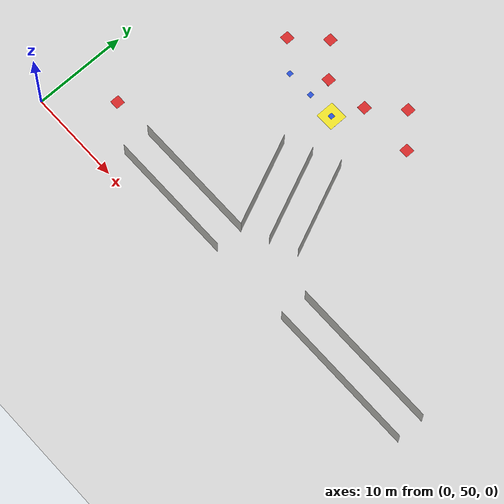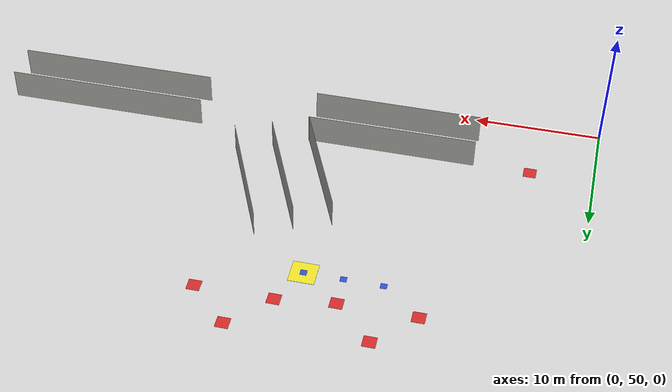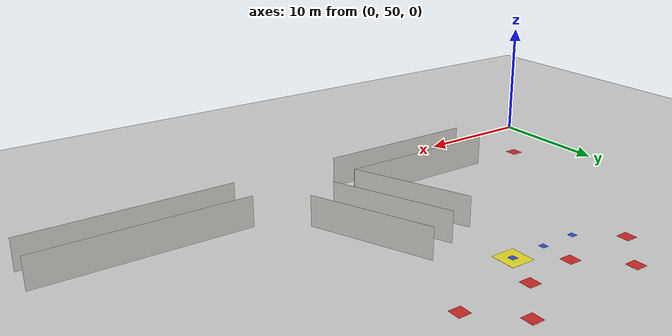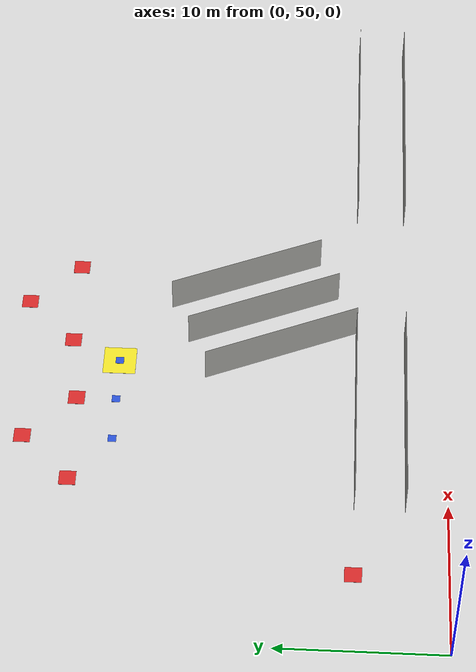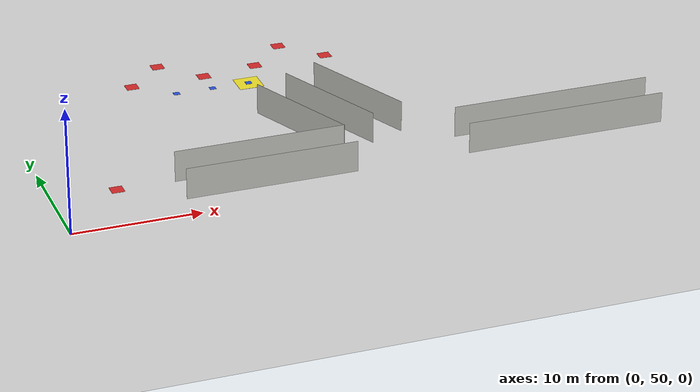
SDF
<sdf version="1.6">
 <world name="default">
  <model name="ground_plane">
   <static>1</static>
   <link name="link">
    <collision name="collision">
     <geometry><plane><normal>0 0 1</normal><size>100 100</size></plane></geometry>
     <surface><friction><ode><mu>100</mu><mu2>50</mu2></ode></friction></surface>
    </collision>
    <visual name="visual">
     <cast_shadows>0</cast_shadows>
     <geometry><plane><normal>0 0 1</normal><size>100 100</size></plane></geometry>
     <material>
      <script><uri>file://media/materials/scripts/gazebo.material</uri><name>Gazebo/Grey</name></script>
     </material>
    </visual>
   </link>
  </model>
  <model name="EMS_T3">
   <pose>23.7245 61.2495 0 0 -0 0</pose>
   <link name="Wall_4">
    <collision name="Wall_4_Collision">
     <geometry><box><size>10.0198 0.001 2.5</size></box></geometry>
     <pose>0 0 1.25 0 -0 0</pose>
    </collision>
    <visual name="Wall_4_Visual">
     <pose>0 0 1.25 0 -0 0</pose>
     <geometry><box><size>10.0198 0.001 2.5</size></box></geometry>
     <material>
      <script><uri>file://media/materials/scripts/gazebo.material</uri><name>Gazebo/CeilingTiled</name></script>
      <ambient>0.435294 0.796078 0.67451 1</ambient>
     </material>
    </visual>
    <pose>0 -2e-06 0 0 -0 1.9733</pose>
   </link>
   <static>1</static>
  </model>
  <model name="EMS_T3_clone">
   <pose>20.9647 60.0749 0 0 -0 0</pose>
   <link name="Wall_4">
    <collision name="Wall_4_Collision">
     <geometry><box><size>10.0198 0.001 2.5</size></box></geometry>
     <pose>0 0 1.25 0 -0 0</pose>
    </collision>
    <visual name="Wall_4_Visual">
     <pose>0 0 1.25 0 -0 0</pose>
     <geometry><box><size>10.0198 0.001 2.5</size></box></geometry>
     <material>
      <script><uri>file://media/materials/scripts/gazebo.material</uri><name>Gazebo/CeilingTiled</name></script>
      <ambient>0.435294 0.796078 0.67451 1</ambient>
     </material>
    </visual>
    <pose>0 -2e-06 0 0 -0 1.9733</pose>
   </link>
   <static>1</static>
  </model>
  <model name="EMS_T3_clone_0">
   <pose>26.4853 62.4251 0 0 -0 0</pose>
   <link name="Wall_4">
    <collision name="Wall_4_Collision">
     <geometry><box><size>10.0198 0.001 2.5</size></box></geometry>
     <pose>0 0 1.25 0 -0 0</pose>
    </collision>
    <visual name="Wall_4_Visual">
     <pose>0 0 1.25 0 -0 0</pose>
     <geometry><box><size>10.0198 0.001 2.5</size></box></geometry>
     <material>
      <script><uri>file://media/materials/scripts/gazebo.material</uri><name>Gazebo/CeilingTiled</name></script>
      <ambient>0.435294 0.796078 0.67451 1</ambient>
     </material>
    </visual>
    <pose>0 -2e-06 0 0 -0 1.9733</pose>
   </link>
   <static>1</static>
  </model>
  <model name="EMS_T5">
   <pose>16.225 52.5 0 0 -0 0</pose>
   <link name="Wall_6">
    <collision name="Wall_6_Collision">
     <geometry><box><size>13.45 0.001 2.5</size></box></geometry>
     <pose>0 0 1.25 0 -0 0</pose>
    </collision>
    <visual name="Wall_6_Visual">
     <pose>0 0 1.25 0 -0 0</pose>
     <geometry><box><size>13.45 0.001 2.5</size></box></geometry>
     <material>
      <script><uri>file://media/materials/scripts/gazebo.material</uri><name>Gazebo/CeilingTiled</name></script>
      <ambient>0.435294 0.796078 0.67451 1</ambient>
     </material>
    </visual>
    <pose>0 0 0 0 -0 3.14159</pose>
   </link>
   <static>1</static>
  </model>
  <model name="EMX_T9">
   <pose>40 52.5 0 0 -0 0</pose>
   <link name="Wall_16">
    <collision name="Wall_16_Collision">
     <geometry><box><size>16.1 0.001 2.5</size></box></geometry>
     <pose>0 0 1.25 0 -0 0</pose>
    </collision>
    <visual name="Wall_16_Visual">
     <pose>0 0 1.25 0 -0 0</pose>
     <geometry><box><size>16.1 0.001 2.5</size></box></geometry>
     <material>
      <script><uri>file://media/materials/scripts/gazebo.material</uri><name>Gazebo/CeilingTiled</name></script>
      <ambient>0.435294 0.796078 0.67451 1</ambient>
     </material>
    </visual>
   </link>
   <static>1</static>
  </model>
  <model name="EMX_T9_clone">
   <pose>40 55.5 0 0 -0 0</pose>
   <link name="Wall_16">
    <collision name="Wall_16_Collision">
     <geometry><box><size>16.1 0.001 2.5</size></box></geometry>
     <pose>0 0 1.25 0 -0 0</pose>
    </collision>
    <visual name="Wall_16_Visual">
     <pose>0 0 1.25 0 -0 0</pose>
     <geometry><box><size>16.1 0.001 2.5</size></box></geometry>
     <material>
      <script><uri>file://media/materials/scripts/gazebo.material</uri><name>Gazebo/CeilingTiled</name></script>
      <ambient>0.435294 0.796078 0.67451 1</ambient>
     </material>
    </visual>
   </link>
   <static>1</static>
  </model>
  <model name="EMS_T5_clone_0">
   <pose>16.225 55.5 0 0 -0 0</pose>
   <link name="Wall_6">
    <collision name="Wall_6_Collision">
     <geometry><box><size>13.45 0.001 2.5</size></box></geometry>
     <pose>0 0 1.25 0 -0 0</pose>
    </collision>
    <visual name="Wall_6_Visual">
     <pose>0 0 1.25 0 -0 0</pose>
     <geometry><box><size>13.45 0.001 2.5</size></box></geometry>
     <material>
      <script><uri>file://media/materials/scripts/gazebo.material</uri><name>Gazebo/CeilingTiled</name></script>
      <ambient>0.435294 0.796078 0.67451 1</ambient>
     </material>
    </visual>
    <pose>0 0 0 0 -0 3.14159</pose>
   </link>
   <static>1</static>
  </model>
  <model name="my_objectT1">
   <link name="my_box">
    <inertial>
     <mass>1</mass>
     <inertia><ixx>1</ixx><ixy>0</ixy><ixz>0</ixz><iyy>100</iyy><iyz>0</iyz><izz>1</izz></inertia>
    </inertial>
    <collision name="my_box_collision"><geometry><box><size>2 2 0.01</size></box></geometry></collision>
    <visual name="my_box_visual">
     <geometry><box><size>2 2 0.01</size></box></geometry>
     <material>
      <script><name>Gazebo/Yellow</name><uri>file://media/materials/scripts/gazebo.material</uri></script>
     </material>
    </visual>
   </link>
   <pose>20 70 0.1 0 -0 0</pose>
  </model>
  <model name="my_objecteg1w2">
   <link name="my_box">
    <inertial>
     <mass>1</mass>
     <inertia><ixx>1</ixx><ixy>0</ixy><ixz>0</ixz><iyy>100</iyy><iyz>0</iyz><izz>1</izz></inertia>
    </inertial>
    <collision name="my_box_collision"><geometry><box><size>1 1 0.01</size></box></geometry></collision>
    <visual name="my_box_visual">
     <geometry><box><size>1 1 0.01</size></box></geometry>
     <material>
      <script><name>Gazebo/Red</name><uri>file://media/materials/scripts/gazebo.material</uri></script>
     </material>
    </visual>
   </link>
   <pose>5 55.5 0.11 0 -0 0</pose>
  </model>
  <model name="my_objecteg5w1">
   <link name="my_box">
    <inertial>
     <mass>1</mass>
     <inertia><ixx>1</ixx><ixy>0</ixy><ixz>0</ixz><iyy>100</iyy><iyz>0</iyz><izz>1</izz></inertia>
    </inertial>
    <collision name="my_box_collision"><geometry><box><size>1 1 0.01</size></box></geometry></collision>
    <visual name="my_box_visual">
     <geometry><box><size>1 1 0.01</size></box></geometry>
     <material>
      <script><name>Gazebo/Red</name><uri>file://media/materials/scripts/gazebo.material</uri></script>
     </material>
    </visual>
   </link>
   <pose>11 72.4 0.11 0 -0 0</pose>
  </model>
  <model name="my_objecteg5w2">
   <link name="my_box">
    <inertial>
     <mass>1</mass>
     <inertia><ixx>1</ixx><ixy>0</ixy><ixz>0</ixz><iyy>100</iyy><iyz>0</iyz><izz>1</izz></inertia>
    </inertial>
    <collision name="my_box_collision"><geometry><box><size>1 1 0.01</size></box></geometry></collision>
    <visual name="my_box_visual">
     <geometry><box><size>1 1 0.01</size></box></geometry>
     <material>
      <script><name>Gazebo/Red</name><uri>file://media/materials/scripts/gazebo.material</uri></script>
     </material>
    </visual>
   </link>
   <pose>14 75.4 0.11 0 -0 0</pose>
  </model>
  <model name="my_objecteg5w3">
   <link name="my_box">
    <inertial>
     <mass>1</mass>
     <inertia><ixx>1</ixx><ixy>0</ixy><ixz>0</ixz><iyy>100</iyy><iyz>0</iyz><izz>1</izz></inertia>
    </inertial>
    <collision name="my_box_collision"><geometry><box><size>1 1 0.01</size></box></geometry></collision>
    <visual name="my_box_visual">
     <geometry><box><size>1 1 0.01</size></box></geometry>
     <material>
      <script><name>Gazebo/Red</name><uri>file://media/materials/scripts/gazebo.material</uri></script>
     </material>
    </visual>
   </link>
   <pose>17 72.4 0.11 0 -0 0</pose>
  </model>
  <model name="my_objecteg6w1">
   <link name="my_box">
    <inertial>
     <mass>1</mass>
     <inertia><ixx>1</ixx><ixy>0</ixy><ixz>0</ixz><iyy>100</iyy><iyz>0</iyz><izz>1</izz></inertia>
    </inertial>
    <collision name="my_box_collision"><geometry><box><size>1 1 0.01</size></box></geometry></collision>
    <visual name="my_box_visual">
     <geometry><box><size>1 1 0.01</size></box></geometry>
     <material>
      <script><name>Gazebo/Red</name><uri>file://media/materials/scripts/gazebo.material</uri></script>
     </material>
    </visual>
   </link>
   <pose>21.5 73 0.11 0 -0 0</pose>
  </model>
  <model name="my_objecteg6w2">
   <link name="my_box">
    <inertial>
     <mass>1</mass>
     <inertia><ixx>1</ixx><ixy>0</ixy><ixz>0</ixz><iyy>100</iyy><iyz>0</iyz><izz>1</izz></inertia>
    </inertial>
    <collision name="my_box_collision"><geometry><box><size>1 1 0.01</size></box></geometry></collision>
    <visual name="my_box_visual">
     <geometry><box><size>1 1 0.01</size></box></geometry>
     <material>
      <script><name>Gazebo/Red</name><uri>file://media/materials/scripts/gazebo.material</uri></script>
     </material>
    </visual>
   </link>
   <pose>24.5 76 0.11 0 -0 0</pose>
  </model>
  <model name="my_objecteg6w3">
   <link name="my_box">
    <inertial>
     <mass>1</mass>
     <inertia><ixx>1</ixx><ixy>0</ixy><ixz>0</ixz><iyy>100</iyy><iyz>0</iyz><izz>1</izz></inertia>
    </inertial>
    <collision name="my_box_collision"><geometry><box><size>1 1 0.01</size></box></geometry></collision>
    <visual name="my_box_visual">
     <geometry><box><size>1 1 0.01</size></box></geometry>
     <material>
      <script><name>Gazebo/Red</name><uri>file://media/materials/scripts/gazebo.material</uri></script>
     </material>
    </visual>
   </link>
   <pose>27.5 73 0.11 0 -0 0</pose>
  </model>
  <model name="my_objectg3w1">
   <link name="my_box">
    <inertial>
     <mass>1</mass>
     <inertia><ixx>1</ixx><ixy>0</ixy><ixz>0</ixz><iyy>100</iyy><iyz>0</iyz><izz>1</izz></inertia>
    </inertial>
    <collision name="my_box_collision"><geometry><box><size>0.5 0.5 0.01</size></box></geometry></collision>
    <visual name="my_box_visual">
     <geometry><box><size>0.5 0.5 0.01</size></box></geometry>
     <material>
      <script><name>Gazebo/Blue</name><uri>file://media/materials/scripts/gazebo.material</uri></script>
     </material>
    </visual>
   </link>
   <pose>20 70 0.12 0 -0 0</pose>
  </model>
  <model name="my_objectg3w2">
   <link name="my_box">
    <inertial>
     <mass>1</mass>
     <inertia><ixx>1</ixx><ixy>0</ixy><ixz>0</ixz><iyy>100</iyy><iyz>0</iyz><izz>1</izz></inertia>
    </inertial>
    <collision name="my_box_collision"><geometry><box><size>0.5 0.5 0.01</size></box></geometry></collision>
    <visual name="my_box_visual">
     <geometry><box><size>0.5 0.5 0.01</size></box></geometry>
     <material>
      <script><name>Gazebo/Blue</name><uri>file://media/materials/scripts/gazebo.material</uri></script>
     </material>
    </visual>
   </link>
   <pose>17 70 0.12 0 -0 0</pose>
  </model>
  <model name="my_objectg3w3">
   <link name="my_box">
    <inertial>
     <mass>1</mass>
     <inertia><ixx>1</ixx><ixy>0</ixy><ixz>0</ixz><iyy>100</iyy><iyz>0</iyz><izz>1</izz></inertia>
    </inertial>
    <collision name="my_box_collision"><geometry><box><size>0.5 0.5 0.01</size></box></geometry></collision>
    <visual name="my_box_visual">
     <geometry><box><size>0.5 0.5 0.01</size></box></geometry>
     <material>
      <script><name>Gazebo/Blue</name><uri>file://media/materials/scripts/gazebo.material</uri></script>
     </material>
    </visual>
   </link>
   <pose>14 70 0.12 0 -0 0</pose>
  </model>
 </world>
</sdf>
